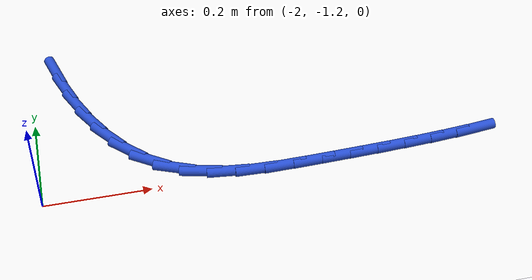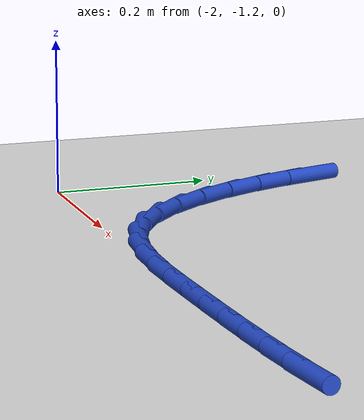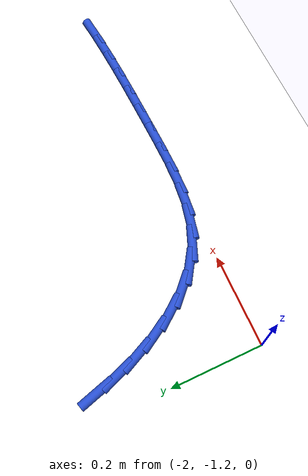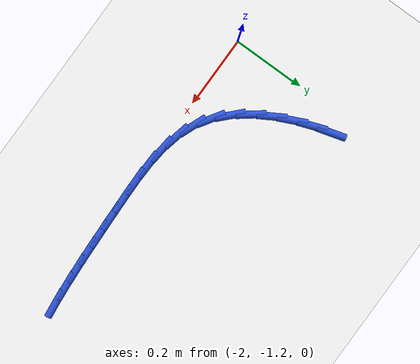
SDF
<sdf version="1.6">
 <world name="default">
  <model name="ground_plane">
   <static>1</static>
   <link name="link">
    <collision name="collision">
     <geometry><plane><normal>0 0 1</normal><size>100 100</size></plane></geometry>
     <surface><friction><ode><mu>100</mu><mu2>50</mu2></ode></friction></surface>
    </collision>
    <visual name="visual">
     <cast_shadows>0</cast_shadows>
     <geometry><plane><normal>0 0 1</normal><size>100 100</size></plane></geometry>
     <material>
      <script><uri>file://media/materials/scripts/gazebo.material</uri><name>Gazebo/WhiteGlow</name></script>
     </material>
    </visual>
   </link>
  </model>
  <model name="line">
   <link name="link_97">
    <pose>-1.948543406637292 -0.8662516991353358 0.01 0 1.57 -1.2896818146208746</pose>
    <collision name="collision">
     <geometry><cylinder><radius>0.01</radius><length>0.08</length></cylinder></geometry>
    </collision>
    <visual name="visual">
     <material>
      <script><name>Gazebo/Blue</name><uri>file://media/materials/scripts/gazebo.material</uri></script>
     </material>
     <geometry><cylinder><radius>0.01</radius><length>0.08</length></cylinder></geometry>
    </visual>
   </link>
   <link name="link_98">
    <pose>-1.9340388269011042 -0.9164820300137384 0.01 0 1.57 -1.2149411573597273</pose>
    <collision name="collision">
     <geometry><cylinder><radius>0.01</radius><length>0.08</length></cylinder></geometry>
    </collision>
    <visual name="visual">
     <material>
      <script><name>Gazebo/Blue</name><uri>file://media/materials/scripts/gazebo.material</uri></script>
     </material>
     <geometry><cylinder><radius>0.01</radius><length>0.08</length></cylinder></geometry>
    </visual>
   </link>
   <link name="link_99">
    <pose>-1.9155814436373986 -0.9661416193441614 0.01 0 1.57 -1.1285802432263023</pose>
    <collision name="collision">
     <geometry><cylinder><radius>0.01</radius><length>0.08</length></cylinder></geometry>
    </collision>
    <visual name="visual">
     <material>
      <script><name>Gazebo/Blue</name><uri>file://media/materials/scripts/gazebo.material</uri></script>
     </material>
     <geometry><cylinder><radius>0.01</radius><length>0.08</length></cylinder></geometry>
    </visual>
   </link>
   <link name="link_100">
    <pose>-1.8925388261710452 -1.0148070359951333 0.01 0 1.57 -1.0284880949981359</pose>
    <collision name="collision">
     <geometry><cylinder><radius>0.01</radius><length>0.08</length></cylinder></geometry>
    </collision>
    <visual name="visual">
     <material>
      <script><name>Gazebo/Blue</name><uri>file://media/materials/scripts/gazebo.material</uri></script>
     </material>
     <geometry><cylinder><radius>0.01</radius><length>0.08</length></cylinder></geometry>
    </visual>
   </link>
   <link name="link_101">
    <pose>-1.86478321034934 -1.0608689748298674 0.01 0 1.57 -0.9075109410303202</pose>
    <collision name="collision">
     <geometry><cylinder><radius>0.01</radius><length>0.08</length></cylinder></geometry>
    </collision>
    <visual name="visual">
     <material>
      <script><name>Gazebo/Blue</name><uri>file://media/materials/scripts/gazebo.material</uri></script>
     </material>
     <geometry><cylinder><radius>0.01</radius><length>0.08</length></cylinder></geometry>
    </visual>
   </link>
   <link name="link_102">
    <pose>-1.832311012009018 -1.1024263304535573 0.01 0 1.57 -0.7571973990690148</pose>
    <collision name="collision">
     <geometry><cylinder><radius>0.01</radius><length>0.08</length></cylinder></geometry>
    </collision>
    <visual name="visual">
     <material>
      <script><name>Gazebo/Blue</name><uri>file://media/materials/scripts/gazebo.material</uri></script>
     </material>
     <geometry><cylinder><radius>0.01</radius><length>0.08</length></cylinder></geometry>
    </visual>
   </link>
   <link name="link_103">
    <pose>-1.7951186469868143 -1.137577997471396 0.01 0 1.57 -0.5701631036301459</pose>
    <collision name="collision">
     <geometry><cylinder><radius>0.01</radius><length>0.08</length></cylinder></geometry>
    </collision>
    <visual name="visual">
     <material>
      <script><name>Gazebo/Blue</name><uri>file://media/materials/scripts/gazebo.material</uri></script>
     </material>
     <geometry><cylinder><radius>0.01</radius><length>0.08</length></cylinder></geometry>
    </visual>
   </link>
   <link name="link_104">
    <pose>-1.7532095070386418 -1.1644500830636968 0.01 0 1.57 -0.3728035466586078</pose>
    <collision name="collision">
     <geometry><cylinder><radius>0.01</radius><length>0.08</length></cylinder></geometry>
    </collision>
    <visual name="visual">
     <material>
      <script><name>Gazebo/Blue</name><uri>file://media/materials/scripts/gazebo.material</uri></script>
     </material>
     <geometry><cylinder><radius>0.01</radius><length>0.08</length></cylinder></geometry>
    </visual>
   </link>
   <link name="link_105">
    <pose>-1.7069399839135213 -1.182545722812097 0.01 0 1.57 -0.2141329157415003</pose>
    <collision name="collision">
     <geometry><cylinder><radius>0.01</radius><length>0.08</length></cylinder></geometry>
    </collision>
    <visual name="visual">
     <material>
      <script><name>Gazebo/Blue</name><uri>file://media/materials/scripts/gazebo.material</uri></script>
     </material>
     <geometry><cylinder><radius>0.01</radius><length>0.08</length></cylinder></geometry>
    </visual>
   </link>
   <link name="link_106">
    <pose>-1.6571789256100358 -1.1933671084564337 0.01 0 1.57 -0.0991396948992879</pose>
    <collision name="collision">
     <geometry><cylinder><radius>0.01</radius><length>0.08</length></cylinder></geometry>
    </collision>
    <visual name="visual">
     <material>
      <script><name>Gazebo/Blue</name><uri>file://media/materials/scripts/gazebo.material</uri></script>
     </material>
     <geometry><cylinder><radius>0.01</radius><length>0.08</length></cylinder></geometry>
    </visual>
   </link>
   <link name="link_107">
    <pose>-1.6048354428585647 -1.1985734938506782 0.01 0 1.57 -0.02314864417841861</pose>
    <collision name="collision">
     <geometry><cylinder><radius>0.01</radius><length>0.08</length></cylinder></geometry>
    </collision>
    <visual name="visual">
     <material>
      <script><name>Gazebo/Blue</name><uri>file://media/materials/scripts/gazebo.material</uri></script>
     </material>
     <geometry><cylinder><radius>0.01</radius><length>0.08</length></cylinder></geometry>
    </visual>
   </link>
   <link name="link_108">
    <pose>-1.5508186463894937 -1.1998241328488037 0.01 0 1.57 0.019089219173929535</pose>
    <collision name="collision">
     <geometry><cylinder><radius>0.01</radius><length>0.08</length></cylinder></geometry>
    </collision>
    <visual name="visual">
     <material>
      <script><name>Gazebo/Blue</name><uri>file://media/materials/scripts/gazebo.material</uri></script>
     </material>
     <geometry><cylinder><radius>0.01</radius><length>0.08</length></cylinder></geometry>
    </visual>
   </link>
   <link name="link_109">
    <pose>-1.4960376469332057 -1.1987782793047823 0.01 0 1.57 0.03212965184733256</pose>
    <collision name="collision">
     <geometry><cylinder><radius>0.01</radius><length>0.08</length></cylinder></geometry>
    </collision>
    <visual name="visual">
     <material>
      <script><name>Gazebo/Blue</name><uri>file://media/materials/scripts/gazebo.material</uri></script>
     </material>
     <geometry><cylinder><radius>0.01</radius><length>0.08</length></cylinder></geometry>
    </visual>
   </link>
   <link name="link_110">
    <pose>-1.4413664324591466 -1.1970211075247243 0.01 0 1.57 0.03527232645870626</pose>
    <collision name="collision">
     <geometry><cylinder><radius>0.01</radius><length>0.08</length></cylinder></geometry>
    </collision>
    <visual name="visual">
     <material>
      <script><name>Gazebo/Blue</name><uri>file://media/materials/scripts/gazebo.material</uri></script>
     </material>
     <geometry><cylinder><radius>0.01</radius><length>0.08</length></cylinder></geometry>
    </visual>
   </link>
   <link name="link_111">
    <pose>-1.3871914246264834 -1.195109436103059 0.01 0 1.57 0.0421363509756161</pose>
    <collision name="collision">
     <geometry><cylinder><radius>0.01</radius><length>0.08</length></cylinder></geometry>
    </collision>
    <visual name="visual">
     <material>
      <script><name>Gazebo/Blue</name><uri>file://media/materials/scripts/gazebo.material</uri></script>
     </material>
     <geometry><cylinder><radius>0.01</radius><length>0.08</length></cylinder></geometry>
    </visual>
   </link>
   <link name="link_112">
    <pose>-1.333542236163494 -1.192847516251439 0.01 0 1.57 0.05315225013777325</pose>
    <collision name="collision">
     <geometry><cylinder><radius>0.01</radius><length>0.08</length></cylinder></geometry>
    </collision>
    <visual name="visual">
     <material>
      <script><name>Gazebo/Blue</name><uri>file://media/materials/scripts/gazebo.material</uri></script>
     </material>
     <geometry><cylinder><radius>0.01</radius><length>0.08</length></cylinder></geometry>
    </visual>
   </link>
   <link name="link_113">
    <pose>-1.2804403103038169 -1.190022368404297 0.01 0 1.57 0.0684467767091622</pose>
    <collision name="collision">
     <geometry><cylinder><radius>0.01</radius><length>0.08</length></cylinder></geometry>
    </collision>
    <visual name="visual">
     <material>
      <script><name>Gazebo/Blue</name><uri>file://media/materials/scripts/gazebo.material</uri></script>
     </material>
     <geometry><cylinder><radius>0.01</radius><length>0.08</length></cylinder></geometry>
    </visual>
   </link>
   <link name="link_114">
    <pose>-1.2279070902810925 -1.1864210129960655 0.01 0 1.57 0.08814740515008042</pose>
    <collision name="collision">
     <geometry><cylinder><radius>0.01</radius><length>0.08</length></cylinder></geometry>
    </collision>
    <visual name="visual">
     <material>
      <script><name>Gazebo/Blue</name><uri>file://media/materials/scripts/gazebo.material</uri></script>
     </material>
     <geometry><cylinder><radius>0.01</radius><length>0.08</length></cylinder></geometry>
    </visual>
   </link>
   <link name="link_115">
    <pose>-1.1759640193289587 -1.181830470461177 0.01 0 1.57 0.11237364864847353</pose>
    <collision name="collision">
     <geometry><cylinder><radius>0.01</radius><length>0.08</length></cylinder></geometry>
    </collision>
    <visual name="visual">
     <material>
      <script><name>Gazebo/Blue</name><uri>file://media/materials/scripts/gazebo.material</uri></script>
     </material>
     <geometry><cylinder><radius>0.01</radius><length>0.08</length></cylinder></geometry>
    </visual>
   </link>
  </model>
 </world>
</sdf>
